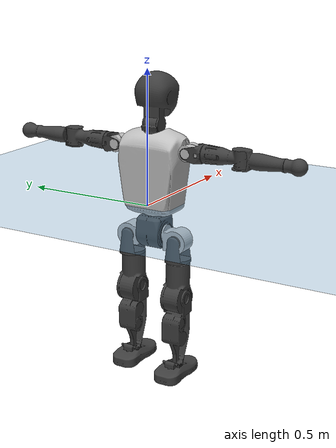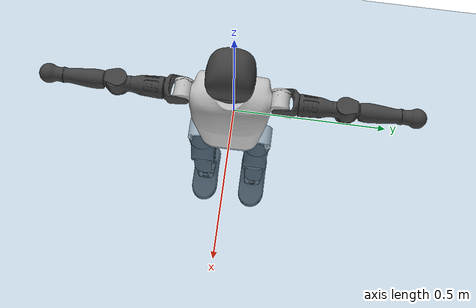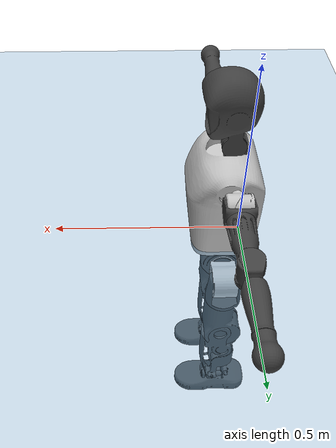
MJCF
<mujoco model="T1">
  <compiler angle="radian" assetdir="assets" balanceinertia="true" inertiafromgeom="false"/>

  <option timestep="0.005" density="1.2" viscosity="2e-05"/>

  <size nkey="1"/>

  <visual>
    <quality shadowsize="8192"/>
    <map shadowclip="0.5"/>
  </visual>

  <default>
    <default class="/">
      <joint armature="0.01" damping="0.01" frictionloss="0.1"/>
      <geom contype="0" conaffinity="0" group="1" solref="-1000 -80"/>
      <site size="0.01 0.005 0.005" group="5"/>
      <general forcelimited="true" biastype="affine" gainprm="25" biasprm="0 -25 -0.6"/>
      <default class="t1">
        <geom rgba="0.25 0.25 0.25 1"/>
        <default class="visual">
          <geom type="mesh" group="2"/>
        </default>
        <default class="collision">
          <geom group="3"/>
        </default>
        <default class="foot">
          <geom size="0.1115 0.05 0.015" type="box" condim="6" group="4" priority="1" solimp="0.015 1 0.015"/>
        </default>
        <default class="reward_collision_sphere">
          <geom group="5" rgba="1 0 0 1"/>
        </default>
      </default>
    </default>
  </default>

  <asset>
    <texture type="skybox" colorspace="auto" name="//unnamed_texture_0" builtin="gradient" rgb1="0.95 0.95 0.95" rgb2="0.95 0.95 0.95" width="100" height="600"/>
    <texture type="2d" colorspace="auto" name="texplane" builtin="checker" rgb1="0.345 0.575 0.748" rgb2="0.345 0.575 0.748" markrgb="1 1 1" width="512" height="512"/>
    <material name="MatPlane" class="/" texture="texplane" texuniform="true" texrepeat="2 2" specular="0.9"/>
    <mesh name="Trunk" class="/" file="Trunk.stl"/>
    <mesh name="H1" class="/" file="H1.stl"/>
    <mesh name="H2" class="/" file="H2.stl"/>
    <mesh name="AL1" class="/" file="AL1.stl"/>
    <mesh name="AL2" class="/" file="AL2.stl"/>
    <mesh name="AL3" class="/" file="AL3.stl"/>
    <mesh name="left_hand_link" class="/" file="left_hand_link.stl"/>
    <mesh name="AR1" class="/" file="AR1.stl"/>
    <mesh name="AR2" class="/" file="AR2.stl"/>
    <mesh name="AR3" class="/" file="AR3.stl"/>
    <mesh name="right_hand_link" class="/" file="right_hand_link.stl"/>
    <mesh name="Waist" class="/" file="Waist.stl"/>
    <mesh name="Hip_Pitch_Left" class="/" file="Hip_Pitch_Left.stl"/>
    <mesh name="Hip_Roll_Left" class="/" file="Hip_Roll_Left.stl"/>
    <mesh name="Hip_Yaw_Left" class="/" file="Hip_Yaw_Left.stl"/>
    <mesh name="Shank_Left" class="/" file="Shank_Left.stl"/>
    <mesh name="Ankle_Cross_Left" class="/" file="Ankle_Cross_Left.stl"/>
    <mesh name="left_foot_link" class="/" file="left_foot_link.stl"/>
    <mesh name="Hip_Pitch_Right" class="/" file="Hip_Pitch_Right.stl"/>
    <mesh name="Hip_Roll_Right" class="/" file="Hip_Roll_Right.stl"/>
    <mesh name="Hip_Yaw_Right" class="/" file="Hip_Yaw_Right.stl"/>
    <mesh name="Shank_Right" class="/" file="Shank_Right.stl"/>
    <mesh name="Ankle_Cross_Right" class="/" file="Ankle_Cross_Right.stl"/>
    <mesh name="right_foot_link" class="/" file="right_foot_link.stl"/>
  </asset>

  <worldbody>
    <geom name="floor" class="/" size="100 100 0.125" type="plane" group="0" material="MatPlane"/>
    <light name="toplight_shadow" class="/" pos="0 0 5" dir="0.0990148 0.0990148 -0.990148" type="directional" ambient="0.04 0.04 0.04" diffuse="0.55 0.55 0.55" specular="0.12 0.12 0.12"/>
    <light name="toplight_fill" class="/" pos="0 0 5" dir="0.0990148 0.0990148 -0.990148" type="directional" castshadow="false" ambient="0.04 0.04 0.04" diffuse="0.3 0.3 0.3" specular="0.08 0.08 0.08"/>
    <body name="trunk" childclass="t1" pos="-0.00163214 -0.00258203 0.00282583" quat="0.999999 -5.47131e-05 0.000608371 0.00107104">
      <inertial pos="0.0359249 -0.000268557 0.102529" quat="0.999941 -0.000583263 -0.0107527 -0.00160494" mass="7.35158" diaginertia="0.0128261 0.0556251 0.0474408"/>
      <joint name="//unnamed_joint_0" type="free" armature="0" damping="0" frictionloss="0"/>
      <geom name="//unnamed_geom_1" class="visual" rgba="0.76 0.76 0.76 1" mesh="Trunk"/>
      <geom name="//unnamed_geom_2" class="collision" size="0.0642492 0.0856656 0.128498" pos="0.0401904 0 0.115144" type="box"/>
      <geom name="//unnamed_geom_3" class="reward_collision_sphere" size="0.0985155" pos="0.0401904 0 0.0959531"/>
      <geom name="//unnamed_geom_4" class="reward_collision_sphere" size="0.0128498" pos="0.0401904 0.0799508 0"/>
      <geom name="//unnamed_geom_5" class="reward_collision_sphere" size="0.0128498" pos="0.0401904 -0.0799508 0"/>
      <geom name="//unnamed_geom_6" class="reward_collision_sphere" size="0.0128498" pos="0.0401904 0.100644 0.172716"/>
      <geom name="//unnamed_geom_7" class="reward_collision_sphere" size="0.0128498" pos="0.0401904 -0.100644 0.172716"/>
      <site name="imu" pos="0.0141296 -0.00275603 0.00184073" size="0.00856656"/>
      <camera name="track" pos="0 -1.8812 0" quat="0.707107 0.707107 0 0" mode="trackcom"/>
      <camera name="ego_camera" pos="0.0817204 0 0.403003" quat="-0.5 -0.5 0.5 0.5"/>
      <body name="H1" pos="0.0437767 0.00228773 0.230046" quat="1 8.88208e-06 3.57213e-05 -1.74397e-06">
        <inertial pos="-0.00377442 8.27372e-05 0.057907" quat="0.76316 -0.016276 -0.00429738 0.64599" mass="0.272302" diaginertia="3.11674e-05 0.000164985 0.000117732"/>
        <joint name="AAHead_yaw" pos="0 0 0" axis="-0.000920619 -0.000955711 0.999999" stiffness="0.00274452" range="-1.60785 1.51529" armature="0.00730024" damping="0.0105354" frictionloss="0.0914973"/>
        <geom name="//unnamed_geom_8" class="visual" mesh="H1"/>
        <body name="H2" pos="0.000729756 -0.000195725 0.0618966" quat="1 -1.17857e-05 0.00019678 -0.000117912">
          <inertial pos="0.00443571 0.00130839 0.0950324" quat="0.989205 0.0994144 -0.0699728 -0.0818199" mass="0.388887" diaginertia="0.000258073 0.00140024 0.00139341"/>
          <joint name="Head_pitch" pos="0 0 0" axis="-0.000488734 -0.999992 0.00402686" range="-1.20054 0.32914" armature="0.00758225" damping="0.00979533" frictionloss="0.0839218"/>
          <geom name="//unnamed_geom_9" class="visual" mesh="H2"/>
          <geom name="//unnamed_geom_10" class="collision" size="0.0685325" pos="0.0066984 0 0.105548"/>
          <geom name="//unnamed_geom_11" class="reward_collision_sphere" size="0.0770991" pos="0.0133968 0 0.0959531"/>
        </body>
      </body>
      <body name="AL1" pos="0.0396361 0.100986 0.209557" quat="1 -4.00424e-05 0.00024669 -4.58434e-05">
        <inertial pos="-0.00329584 0.0419421 -0.000219048" quat="0.511037 0.491249 -0.502741 0.494739" mass="0.336177" diaginertia="0.000185256 0.000982465 0.000246555"/>
        <joint name="Left_Shoulder_Pitch" pos="0 0 0" axis="0.014411 0.99989 0.00363796" stiffness="0.00279459" range="-3.29474 1.25732" armature="0.00866667" damping="0.00974696" frictionloss="0.0889599"/>
        <geom name="//unnamed_geom_12" class="visual" rgba="0.76 0.76 0.76 1" mesh="AL1"/>
        <body name="AL2" pos="0.00111108 0.0455109 -0.00213537" quat="1 -5.36932e-05 -2.60083e-05 2.48314e-05">
          <inertial pos="0.00168234 0.032931 0.000174652" quat="0.48862 0.51103 -0.48916 0.510706" mass="0.0993274" diaginertia="5.32805e-05 0.000251681 0.000144031"/>
          <joint name="Left_Shoulder_Roll" pos="0 0 0" axis="-0.99999 -0.00146885 -0.00430541" range="-1.61361 1.79362" armature="0.00871304" damping="0.00957407" frictionloss="0.0900831"/>
          <geom name="//unnamed_geom_13" class="visual" mesh="AL2"/>
          <body name="AL3" pos="0.00331583 0.0567781 0.00289623" quat="0.999999 6.90882e-05 -0.000322944 0.00144383">
            <inertial pos="-0.00219048 0.079331 -0.000188236" quat="0.706144 0.70806 0.000338067 -0.0034646" mass="0.666513" diaginertia="0.00179272 0.00919143 0.00050095"/>
            <joint name="Left_Elbow_Pitch" pos="0 0 0" axis="0.00247682 -0.999991 0.00334553" range="-2.2831 2.27357" armature="0.00752131" damping="0.0143998" frictionloss="0.0879605"/>
            <geom name="//unnamed_geom_14" class="visual" mesh="AL3"/>
            <geom name="//unnamed_geom_15" class="collision" size="0.0256997 0.0642492" pos="0 0.0470299 0" quat="0.707105 0.707108 0 0" type="cylinder"/>
            <geom name="//unnamed_geom_16" class="reward_collision_sphere" size="0.0308396"/>
            <body name="left_hand_link" pos="-0.00174612 0.13909 -0.000924832" quat="0.999999 0.000393549 0.000739659 0.000807999">
              <inertial pos="-0.000101029 0.100494 0.00330941" quat="0.712036 0.70206 -0.00359847 0.0101397" mass="0.198611" diaginertia="0.00110444 0.00587238 0.000164483"/>
              <joint name="Left_Elbow_Yaw" pos="0 0 0" axis="4.15582e-05 -0.000442967 1" stiffness="0.0111262" range="-2.42728 -0.0288337" armature="0.00903823" damping="0.00936754" frictionloss="0.0837221"/>
              <geom name="//unnamed_geom_17" class="visual" mesh="left_hand_link"/>
              <geom name="//unnamed_geom_18" class="collision" size="0.0256997 0.0749574" pos="0 0.122278 0" quat="0.707105 0.707108 0 0" type="cylinder"/>
              <geom name="//unnamed_geom_19" class="reward_collision_sphere" size="0.0428328"/>
              <geom name="//unnamed_geom_20" class="reward_collision_sphere" size="0.029983" pos="0 0.103466 0"/>
              <geom name="//unnamed_geom_21" class="reward_collision_sphere" size="0.029983" pos="0 0.202229 0"/>
            </body>
          </body>
        </body>
      </body>
      <body name="AR1" pos="0.0405602 -0.101115 0.208027" quat="1 3.25228e-05 0.000363311 -6.64935e-05">
        <inertial pos="-0.00120056 -0.0450267 0.00186521" quat="0.501653 0.49796 -0.502634 0.497734" mass="0.322065" diaginertia="0.00017872 0.000898017 0.000229912"/>
        <joint name="Right_Shoulder_Pitch" pos="0 0 0" axis="0.00688988 -0.999955 0.00655545" stiffness="0.00858174" range="-1.16995 3.32866" armature="0.00909658" damping="0.00667557" frictionloss="0.0975949"/>
        <geom name="//unnamed_geom_22" class="visual" rgba="0.76 0.76 0.76 1" mesh="AR1"/>
        <body name="AR2" pos="-0.000461668 -0.045775 -0.00117502" quat="0.999999 0.00108767 -9.03675e-05 0.000443153">
          <inertial pos="-0.000165456 -0.0354196 -0.00215851" quat="0.515131 0.496053 -0.506107 0.482107" mass="0.1016" diaginertia="5.53144e-05 0.000260474 0.000143541"/>
          <joint name="Right_Shoulder_Roll" pos="0 0 0" axis="-0.999804 -0.0176257 -0.00899785" range="-1.73134 1.58179" armature="0.00767056" damping="0.00538577" frictionloss="0.0895268"/>
          <geom name="//unnamed_geom_23" class="visual" mesh="AR2"/>
          <body name="AR3" pos="0.000562373 -0.0596322 0.00199936" quat="0.999999 0.000619473 0.000571995 -0.00103072">
            <inertial pos="0.0012552 -0.0813558 0.00255543" quat="0.708266 0.705941 0.0011183 -0.00238188" mass="0.619142" diaginertia="0.00162887 0.00906558 0.000478545"/>
            <joint name="Right_Elbow_Pitch" pos="0 0 0" axis="-0.000130307 1 -4.92021e-05" range="-2.26496 2.26028" armature="0.00849996" damping="0.0116041" frictionloss="0.0915408"/>
            <geom name="//unnamed_geom_24" class="visual" mesh="AR3"/>
            <geom name="//unnamed_geom_25" class="collision" size="0.0256997 0.0642492" pos="0 -0.0470299 0" quat="0.707105 0.707108 0 0" type="cylinder"/>
            <geom name="//unnamed_geom_26" class="reward_collision_sphere" size="0.0308396"/>
            <body name="right_hand_link" pos="-0.00329518 -0.139374 -0.00112596" quat="1 7.4137e-06 3.11168e-05 -1.6852e-05">
              <inertial pos="-0.000249324 -0.102167 0.00131237" quat="0.706346 0.707866 0.000396252 -0.000107996" mass="0.20326" diaginertia="0.00112418 0.00611072 0.000174347"/>
              <joint name="Right_Elbow_Yaw" pos="0 0 0" axis="-0.00585155 -0.00434596 0.999973" stiffness="0.00189964" range="-0.0150002 2.44211" armature="0.00765103" damping="0.00664732" frictionloss="0.0966171"/>
              <geom name="//unnamed_geom_27" class="visual" mesh="right_hand_link"/>
              <geom name="//unnamed_geom_28" class="collision" size="0.0256997 0.0749574" pos="0 -0.122278 0" quat="0.707105 0.707108 0 0" type="cylinder"/>
              <geom name="//unnamed_geom_29" class="reward_collision_sphere" size="0.0428328"/>
              <geom name="//unnamed_geom_30" class="reward_collision_sphere" size="0.029983" pos="0 -0.103466 0"/>
              <geom name="//unnamed_geom_31" class="reward_collision_sphere" size="0.029983" pos="0 -0.202229 0"/>
            </body>
          </body>
        </body>
      </body>
      <body name="Waist" pos="0.0409878 -0.0032439 -0.109131" quat="0.999999 0.00034131 0.000525356 0.00112162">
        <inertial pos="-0.000869304 0.0022732 0.00428186" quat="0.984194 0.00933674 -0.176787 0.00455102" mass="1.5617" diaginertia="0.000722093 0.0038311 0.00382084"/>
        <joint name="Waist" pos="0 0 0" axis="-0.0109802 -0.00728806 0.999913" stiffness="0.00784771" range="-1.57005 1.57095" armature="0.00862825" damping="0.0148145" frictionloss="0.087996"/>
        <geom name="//unnamed_geom_32" class="visual" mesh="Waist"/>
        <body name="Hip_Pitch_Left" pos="-0.00113538 0.0964706 0.00129723" quat="1 -0.000211398 0.000108583 -0.000170111">
          <inertial pos="0.00282232 -0.00811001 -0.0175395" quat="0.973037 0.22965 0.0211365 -0.00368163" mass="0.654328" diaginertia="0.000243937 0.00114839 0.00104453"/>
          <joint name="Left_Hip_Pitch" pos="0 0 0" axis="-0.0110734 0.999938 -0.00141668" stiffness="0.0128928" range="-1.76697 1.57863" armature="0.00965248" damping="0.00933399" frictionloss="0.0827868"/>
          <geom name="//unnamed_geom_33" class="visual" rgba="0.76 0.76 0.76 1" mesh="Hip_Pitch_Left"/>
          <body name="Hip_Roll_Left" pos="-0.00084154 -0.00270576 -0.0188683" quat="1 4.37945e-05 -0.000103682 -0.000204434">
            <inertial pos="0.000732132 -0.00167289 -0.053656" quat="0.706426 -0.00646304 -0.00631957 0.707729" mass="0.232044" diaginertia="0.00021978 0.00105257 0.000411597"/>
            <joint name="Left_Hip_Roll" pos="0 0 0" axis="-0.999954 0.00708407 -0.00653905" range="-1.55998 0.249581" armature="0.00851309" damping="0.00570835" frictionloss="0.0976835"/>
            <geom name="//unnamed_geom_34" class="visual" mesh="Hip_Roll_Left"/>
            <geom name="//unnamed_geom_35" class="reward_collision_sphere" size="0.0471161"/>
            <body name="Hip_Yaw_Left" pos="0.00339923 -0.003102 -0.0759917" quat="0.999999 0.00025242 -0.00121077 0.000482018">
              <inertial pos="-0.0050497 -0.000104994 -0.0885863" quat="0.698184 -0.0337639 -0.0364923 0.71419" mass="1.35368" diaginertia="0.00335876 0.0183146 0.0020617"/>
              <joint name="Left_Hip_Yaw" pos="0 0 0" axis="-0.000579601 0.00448588 -0.99999" range="-1.03789 1.02508" armature="0.0083202" damping="0.0115349" frictionloss="0.0878189"/>
              <geom name="//unnamed_geom_36" class="visual" mesh="Hip_Yaw_Left"/>
              <geom name="//unnamed_geom_37" class="collision" size="0.0428328 0.0685325" type="cylinder"/>
              <body name="Shank_Left" pos="-0.00654047 -0.000829065 -0.126474" quat="1 -0.000143936 -0.000100938 -0.000271848">
                <inertial pos="-0.00677618 0.000773885 -0.119942" quat="0.998392 0.00192282 -0.0184535 0.0535682" mass="1.08179" diaginertia="0.00483083 0.0248025 0.00145566"/>
                <joint name="Left_Knee_Pitch" pos="0 0 0" axis="-0.00465187 0.999984 -0.00327927" stiffness="0.000395951" range="-0.00434709 2.28501" armature="0.00992571" damping="0" frictionloss="0.0888875"/>
                <geom name="//unnamed_geom_38" class="visual" mesh="Shank_Left"/>
                <geom name="//unnamed_geom_39" class="collision" size="0.0428328 0.0642492" pos="0 0 -0.115144" type="cylinder"/>
                <geom name="//unnamed_geom_40" class="reward_collision_sphere" size="0.0556827"/>
                <body name="Ankle_Cross_Left" pos="0.00249071 -0.000499143 -0.269028" quat="0.999999 -0.00108043 0.000325665 -0.00041578">
                  <inertial pos="-0.00380171 -0.000534094 -0.00520695" quat="0.443766 0.55115 0.54955 0.444185" mass="0.0456271" diaginertia="3.8088e-06 1.89859e-05 9.4814e-06"/>
                  <joint name="Left_Ankle_Pitch" pos="0 0 0" axis="0.00149375 0.999998 0.00155404" range="-0.873515 0.356068" armature="0.00923504" damping="0.0213616" frictionloss="0.0827238"/>
                  <geom name="//unnamed_geom_41" class="visual" mesh="Ankle_Cross_Left"/>
                  <body name="left_foot_link" pos="-0.00218631 -0.00320545 -0.00934848" quat="1 0.000502551 0.000187227 0.000387331">
                    <inertial pos="-0.00300035 -0.00228653 -0.00783805" quat="-0.0116257 0.621044 0.000759149 0.783689" mass="0.43884" diaginertia="0.000361054 0.00173921 0.00183646"/>
                    <joint name="Left_Ankle_Roll" pos="0 0 0" axis="-0.999971 0.00613155 -0.00460713" range="-0.4252 0.495888" armature="0.00869815" damping="0" frictionloss="0.0854853"/>
                    <geom name="//unnamed_geom_42" class="visual" mesh="left_foot_link"/>
                    <geom name="left_foot" class="foot" size="0.108031 0.0386291 0.0136956" pos="0.0066984 0 -0.014393"/>
                    <geom name="//unnamed_geom_44" class="reward_collision_sphere" size="0.0445461" pos="0.0066984 0 -0.014393"/>
                    <geom name="//unnamed_geom_45" class="reward_collision_sphere" size="0.0256997" pos="0.0636348 -0.0216337 -0.014393"/>
                    <geom name="//unnamed_geom_46" class="reward_collision_sphere" size="0.0256997" pos="-0.0468888 -0.0216337 -0.014393"/>
                    <site name="left_foot" class="foot" pos="0.0066984 0 -0.014393" size="0.00856656"/>
                  </body>
                </body>
              </body>
            </body>
          </body>
        </body>
        <body name="Hip_Pitch_Right" pos="-0.00211468 -0.102251 0.000422154" quat="1 0.000104607 0.000743461 0.00015064">
          <inertial pos="-0.0018174 0.00461874 -0.0181673" quat="0.972976 -0.230503 0.0130692 -0.00401194" mass="0.641495" diaginertia="0.000252604 0.00111521 0.00102028"/>
          <joint name="Right_Hip_Pitch" pos="0 0 0" axis="-0.00122482 -0.999999 0.00082544" range="-1.57257 1.74178" armature="0.00788604" damping="0" frictionloss="0.0930068"/>
          <geom name="//unnamed_geom_47" class="visual" rgba="0.76 0.76 0.76 1" mesh="Hip_Pitch_Right"/>
          <body name="Hip_Roll_Right" pos="-0.00320807 -0.0015165 -0.0189977" quat="0.999999 -0.000352942 -0.000382208 -0.00135165">
            <inertial pos="-0.00181588 0.000802185 -0.0485849" quat="0.698506 -0.0101182 -0.00907601 0.715475" mass="0.250189" diaginertia="0.000243579 0.00111922 0.000425743"/>
            <joint name="Right_Hip_Roll" pos="0 0 0" axis="-0.999997 0.0022308 0.000825768" stiffness="0.00432568" range="-0.185069 1.56228" armature="0.00865189" damping="0.0106893" frictionloss="0.0977191"/>
            <geom name="//unnamed_geom_48" class="visual" mesh="Hip_Roll_Right"/>
            <geom name="//unnamed_geom_49" class="reward_collision_sphere" size="0.0471161"/>
            <body name="Hip_Yaw_Right" pos="-0.000748635 -0.000562867 -0.082767" quat="1 1.40974e-05 -4.86798e-06 1.10464e-05">
              <inertial pos="-0.00379041 -0.000739337 -0.0830616" quat="0.714566 -0.0320253 -0.0341791 0.697998" mass="1.39502" diaginertia="0.00359937 0.0188161 0.00217973"/>
              <joint name="Right_Hip_Yaw" pos="0 0 0" axis="-0.00380332 -0.00484377 -0.999981" range="-1.00938 0.992464" armature="0.00821394" damping="0.015833" frictionloss="0.080524"/>
              <geom name="//unnamed_geom_50" class="visual" mesh="Hip_Yaw_Right"/>
              <geom name="//unnamed_geom_51" class="collision" size="0.0428328 0.0685325" type="cylinder"/>
              <body name="Shank_Right" pos="-0.0111358 -0.00172857 -0.131064" quat="1 0.000160063 -0.000623993 0.000109161">
                <inertial pos="-0.00369003 -0.00289312 -0.11819" quat="0.999476 -0.00548963 -0.0265814 -0.0176098" mass="1.16881" diaginertia="0.00468722 0.0258623 0.00156014"/>
                <joint name="Right_Knee_Pitch" pos="0 0 0" axis="0.00607052 -0.99998 -0.00153236" range="-2.38698 -0.00120394" armature="0.00847307" damping="0.00702863" frictionloss="0.0896042"/>
                <geom name="//unnamed_geom_52" class="visual" mesh="Shank_Right"/>
                <geom name="//unnamed_geom_53" class="collision" size="0.0428328 0.0642492" pos="0 0 -0.115144" type="cylinder"/>
                <geom name="//unnamed_geom_54" class="reward_collision_sphere" size="0.0556827"/>
                <body name="Ankle_Cross_Right" pos="-0.00123671 -0.000359797 -0.272354" quat="1 2.10378e-05 -3.35046e-05 -9.60924e-06">
                  <inertial pos="-0.00170859 0.00285906 -0.00779262" quat="0.442737 0.551026 0.551809 0.442562" mass="0.04405" diaginertia="4.00012e-06 1.81189e-05 9.43654e-06"/>
                  <joint name="Right_Ankle_Pitch" pos="0 0 0" axis="0.00677685 -0.999928 -0.00989003" range="-0.295716 0.812762" armature="0.00853254" damping="0.0194028" frictionloss="0.0876578"/>
                  <geom name="//unnamed_geom_55" class="visual" mesh="Ankle_Cross_Right"/>
                  <body name="right_foot_link" pos="0.00248041 0.00170512 -0.0151411" quat="1 -0.000140968 0.000116858 -0.0001485">
                    <inertial pos="-4.41353e-05 0.00255789 -0.010341" quat="-0.000842794 0.611004 -0.00403178 0.791617" mass="0.412616" diaginertia="0.00035323 0.00173731 0.00170889"/>
                    <joint name="Right_Ankle_Roll" pos="0 0 0" axis="-0.99999 0.00389837 -0.0021133" range="-0.49397 0.48224" armature="0.0081205" damping="0.00423272" frictionloss="0.0977725"/>
                    <geom name="//unnamed_geom_56" class="visual" mesh="right_foot_link"/>
                    <geom name="right_foot" class="foot" size="0.0987827 0.038342 0.0139627" pos="0.0066984 0 -0.014393"/>
                    <geom name="//unnamed_geom_58" class="reward_collision_sphere" size="0.0342662"/>
                    <geom name="//unnamed_geom_59" class="reward_collision_sphere" size="0.0256997" pos="0.0066984 0 -0.014393"/>
                    <geom name="//unnamed_geom_60" class="reward_collision_sphere" size="0.0256997" pos="0.0636348 0.0216337 -0.014393"/>
                    <geom name="//unnamed_geom_61" class="reward_collision_sphere" size="0.0256997" pos="-0.0468888 0.0216337 -0.014393"/>
                    <site name="right_foot" class="foot" pos="0.0066984 0 -0.014393" size="0.00856656"/>
                  </body>
                </body>
              </body>
            </body>
          </body>
        </body>
      </body>
    </body>
  </worldbody>

  <contact>
    <pair class="/" geom1="floor" geom2="left_foot" name="//unnamed_contact_0"/>
    <pair class="/" geom1="floor" geom2="right_foot" name="//unnamed_contact_1"/>
  </contact>

  <actuator>
    <general name="AAHead_yaw" class="/" joint="AAHead_yaw" forcerange="-5.88807 5.88807" gainprm="20.2371" biasprm="0 -20.2371 -0.53647"/>
    <general name="Head_pitch" class="/" joint="Head_pitch" forcerange="-5.96076 5.96076" gainprm="20.2371" biasprm="0 -20.2371 -0.53647"/>
    <general name="Left_Shoulder_Pitch" class="/" joint="Left_Shoulder_Pitch" forcerange="-14.5661 14.5661" gainprm="20.2371" biasprm="0 -20.2371 -0.53647"/>
    <general name="Left_Shoulder_Roll" class="/" joint="Left_Shoulder_Roll" forcerange="-13.9289 13.9289" gainprm="20.2371" biasprm="0 -20.2371 -0.53647"/>
    <general name="Left_Elbow_Pitch" class="/" joint="Left_Elbow_Pitch" forcerange="-17.0978 17.0978" gainprm="20.2371" biasprm="0 -20.2371 -0.53647"/>
    <general name="Left_Elbow_Yaw" class="/" joint="Left_Elbow_Yaw" forcerange="-15.2913 15.2913" gainprm="20.2371" biasprm="0 -20.2371 -0.53647"/>
    <general name="Right_Shoulder_Pitch" class="/" joint="Right_Shoulder_Pitch" forcerange="-15.6965 15.6965" gainprm="20.2371" biasprm="0 -20.2371 -0.53647"/>
    <general name="Right_Shoulder_Roll" class="/" joint="Right_Shoulder_Roll" forcerange="-17.0549 17.0549" gainprm="20.2371" biasprm="0 -20.2371 -0.53647"/>
    <general name="Right_Elbow_Pitch" class="/" joint="Right_Elbow_Pitch" forcerange="-15.1758 15.1758" gainprm="20.2371" biasprm="0 -20.2371 -0.53647"/>
    <general name="Right_Elbow_Yaw" class="/" joint="Right_Elbow_Yaw" forcerange="-15.0782 15.0782" gainprm="20.2371" biasprm="0 -20.2371 -0.53647"/>
    <general name="Waist" class="/" joint="Waist" forcerange="-23.1994 23.1994" gainprm="20.2371" biasprm="0 -20.2371 -0.53647"/>
    <general name="Left_Hip_Pitch" class="/" joint="Left_Hip_Pitch" forcerange="-36.9429 36.9429" gainprm="20.2371" biasprm="0 -20.2371 -0.53647"/>
    <general name="Left_Hip_Roll" class="/" joint="Left_Hip_Roll" forcerange="-27.1696 27.1696" gainprm="20.2371" biasprm="0 -20.2371 -0.53647"/>
    <general name="Left_Hip_Yaw" class="/" joint="Left_Hip_Yaw" forcerange="-23.2267 23.2267" gainprm="20.2371" biasprm="0 -20.2371 -0.53647"/>
    <general name="Left_Knee_Pitch" class="/" joint="Left_Knee_Pitch" forcerange="-50.4338 50.4338" gainprm="20.2371" biasprm="0 -20.2371 -0.53647"/>
    <general name="Left_Ankle_Pitch" class="/" joint="Left_Ankle_Pitch" forcerange="-17.1137 17.1137" gainprm="20.2371" biasprm="0 -20.2371 -0.53647"/>
    <general name="Left_Ankle_Roll" class="/" joint="Left_Ankle_Roll" forcerange="-13.356 13.356" gainprm="20.2371" biasprm="0 -20.2371 -0.53647"/>
    <general name="Right_Hip_Pitch" class="/" joint="Right_Hip_Pitch" forcerange="-42.1077 42.1077" gainprm="20.2371" biasprm="0 -20.2371 -0.53647"/>
    <general name="Right_Hip_Roll" class="/" joint="Right_Hip_Roll" forcerange="-27.2065 27.2065" gainprm="20.2371" biasprm="0 -20.2371 -0.53647"/>
    <general name="Right_Hip_Yaw" class="/" joint="Right_Hip_Yaw" forcerange="-25.2248 25.2248" gainprm="20.2371" biasprm="0 -20.2371 -0.53647"/>
    <general name="Right_Knee_Pitch" class="/" joint="Right_Knee_Pitch" forcerange="-55.9022 55.9022" gainprm="20.2371" biasprm="0 -20.2371 -0.53647"/>
    <general name="Right_Ankle_Pitch" class="/" joint="Right_Ankle_Pitch" forcerange="-16.0364 16.0364" gainprm="20.2371" biasprm="0 -20.2371 -0.53647"/>
    <general name="Right_Ankle_Roll" class="/" joint="Right_Ankle_Roll" forcerange="-14.1815 14.1815" gainprm="20.2371" biasprm="0 -20.2371 -0.53647"/>
  </actuator>

  <sensor>
    <gyro site="imu" name="imu_angular_velocity"/>
    <velocimeter site="imu" name="imu_linear_velocity"/>
    <framelinvel objtype="site" objname="left_foot" name="left_foot_global_linear_velocity"/>
    <framelinvel objtype="site" objname="right_foot" name="right_foot_global_linear_velocity"/>
  </sensor>

  <keyframe>
    <key name="home" qpos="0 0 0.6385 1 0 0 0 0 0 0 1.4 0 -0.4 0 -1.4 0 0.4 0 -0.4 0 0 0.8 -0.4 0 0.4 0 0 -0.8 0.4 0"/>
  </keyframe>
</mujoco>
